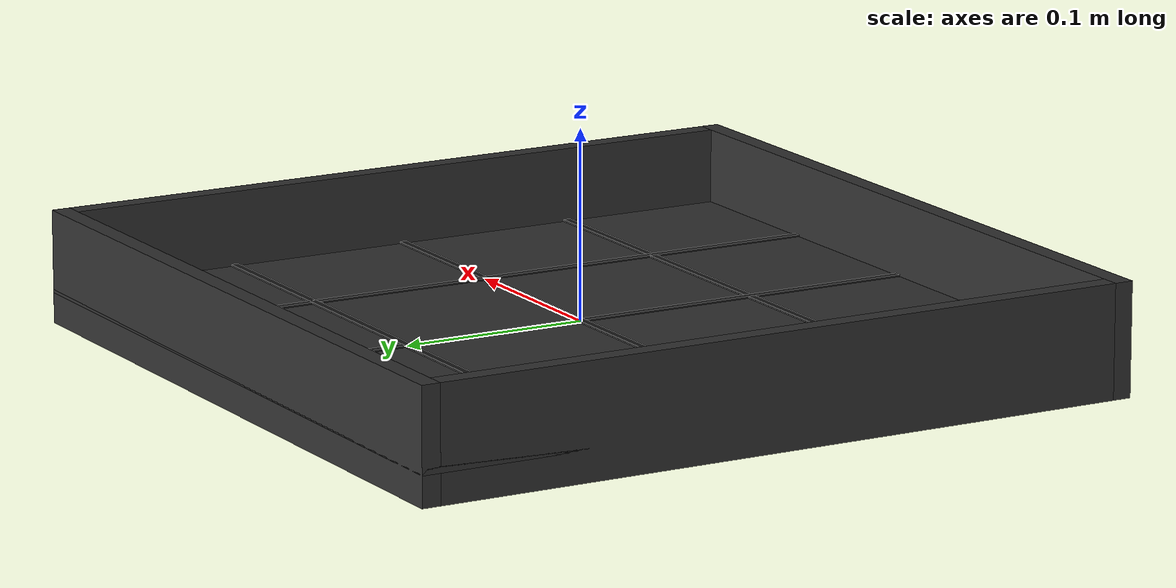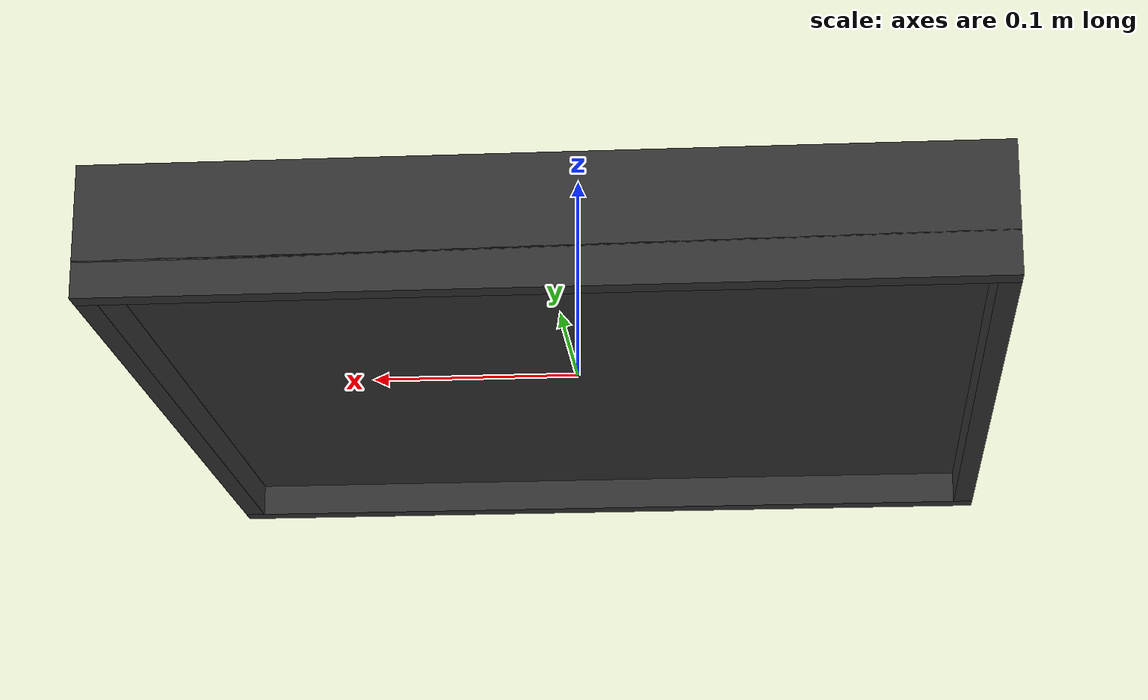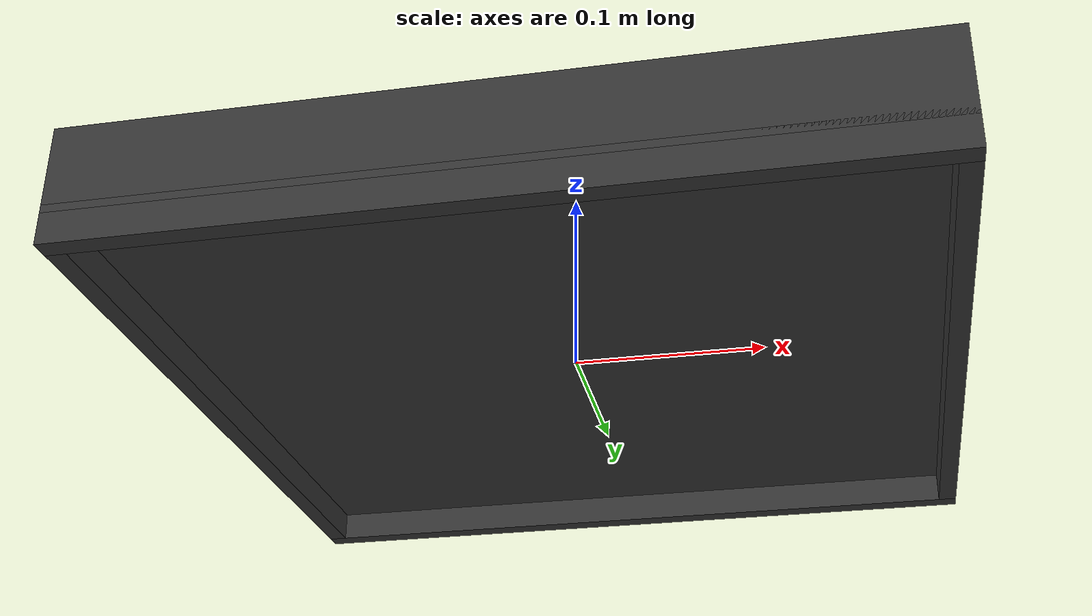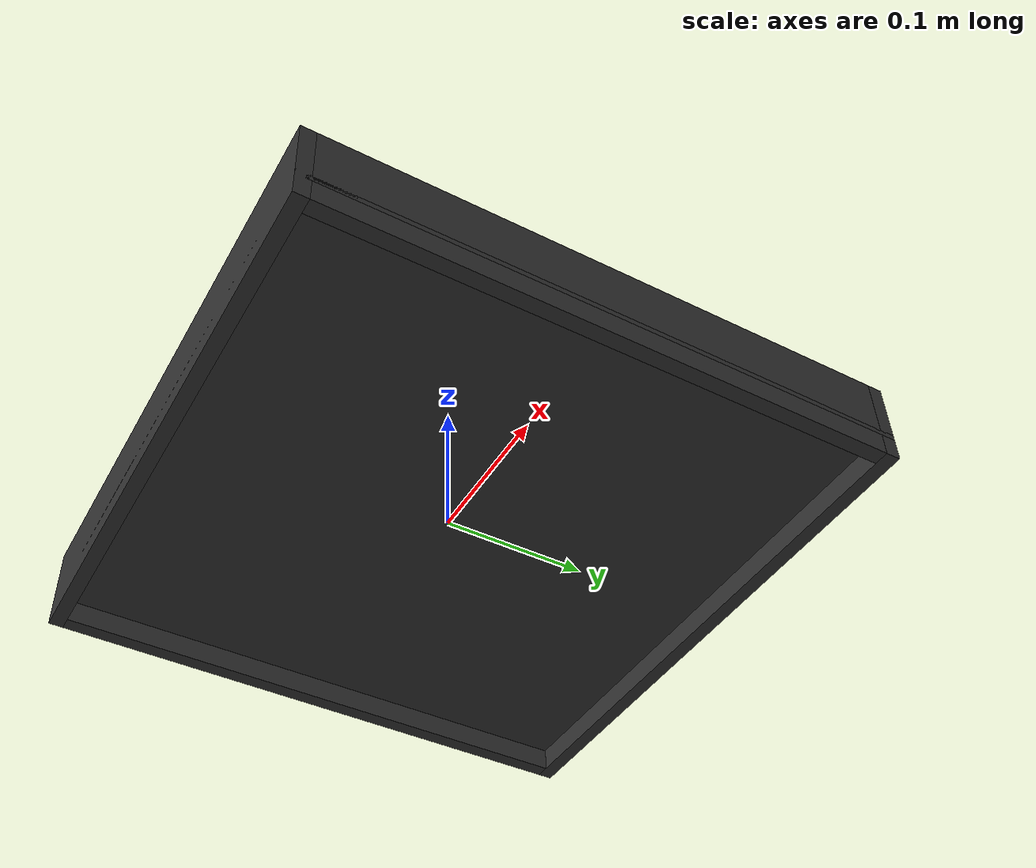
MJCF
<mujoco model="external_frame_4x4_sudoku">
  <asset>
    <texture name="tex_frame" type="2d" builtin="flat" rgb1="0.2 0.2 0.2" width="512" height="512"/>
    <material name="mat_frame" texture="tex_frame" shininess="0.1" specular="0.1"/>
    <material name="mat_grid" texture="tex_frame" rgba="0.5 0.5 0.5 1"/>
  </asset>
  <worldbody>
   <body>
    <body name="object">
      <inertial pos="0 0 0" mass="100" diaginertia="1 1 1" />

      <geom name="wall_back" type="box" size="0.2 0.005 0.03" pos="0 0.195 0.01" material="mat_frame" group="1" density="10000"/>
      <geom name="wall_front" type="box" size="0.2 0.005 0.03" pos="0 -0.195 0.01" material="mat_frame" group="1" density="10000"/>
      <geom name="wall_left" type="box" size="0.005 0.19 0.03" pos="-0.195 0 0.01" material="mat_frame" group="1" density="10000"/>
      <geom name="wall_right" type="box" size="0.005 0.19 0.03" pos="0.195 0 0.01" material="mat_frame" group="1" density="10000"/>

      <geom name="frame_base" type="box" size="0.2 0.2 0.002" pos="0 0 -0.002" material="mat_frame" group="1" density="10000"/>

      <geom name="grid_v1" type="box" size="0.002 0.19 0.0011" pos="-0.1 0 0" material="mat_grid" group="1" conaffinity="0" contype="0"/>
      <geom name="grid_v2" type="box" size="0.002 0.19 0.0011" pos="0 0 0" material="mat_grid" group="1" conaffinity="0" contype="0"/>
      <geom name="grid_v3" type="box" size="0.002 0.19 0.0011" pos="0.1 0 0" material="mat_grid" group="1" conaffinity="0" contype="0"/>

      <geom name="grid_h1" type="box" size="0.19 0.002 0.0011" pos="0 -0.1 0" material="mat_grid" group="1" conaffinity="0" contype="0"/>
      <geom name="grid_h2" type="box" size="0.19 0.002 0.0011" pos="0 0 0" material="mat_grid" group="1" conaffinity="0" contype="0"/>
      <geom name="grid_h3" type="box" size="0.19 0.002 0.0011" pos="0 0.1 0" material="mat_grid" group="1" conaffinity="0" contype="0"/>

      <site name="bottom_site" pos="0 0 0" size="0.002" rgba="0 0 0 0"/>
    </body>
   </body>
  </worldbody>
</mujoco>
